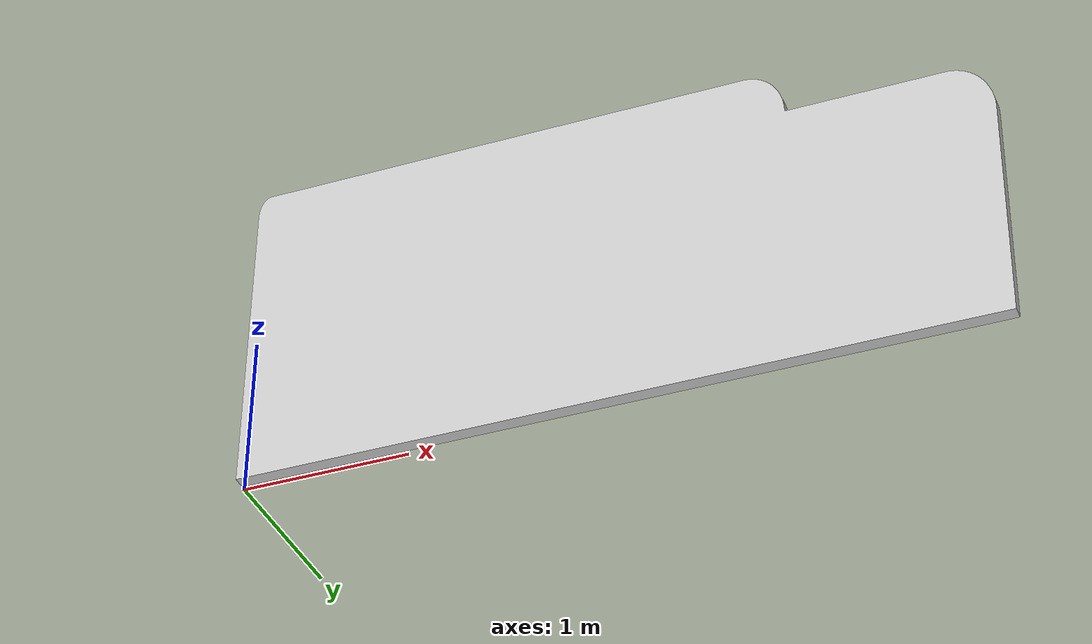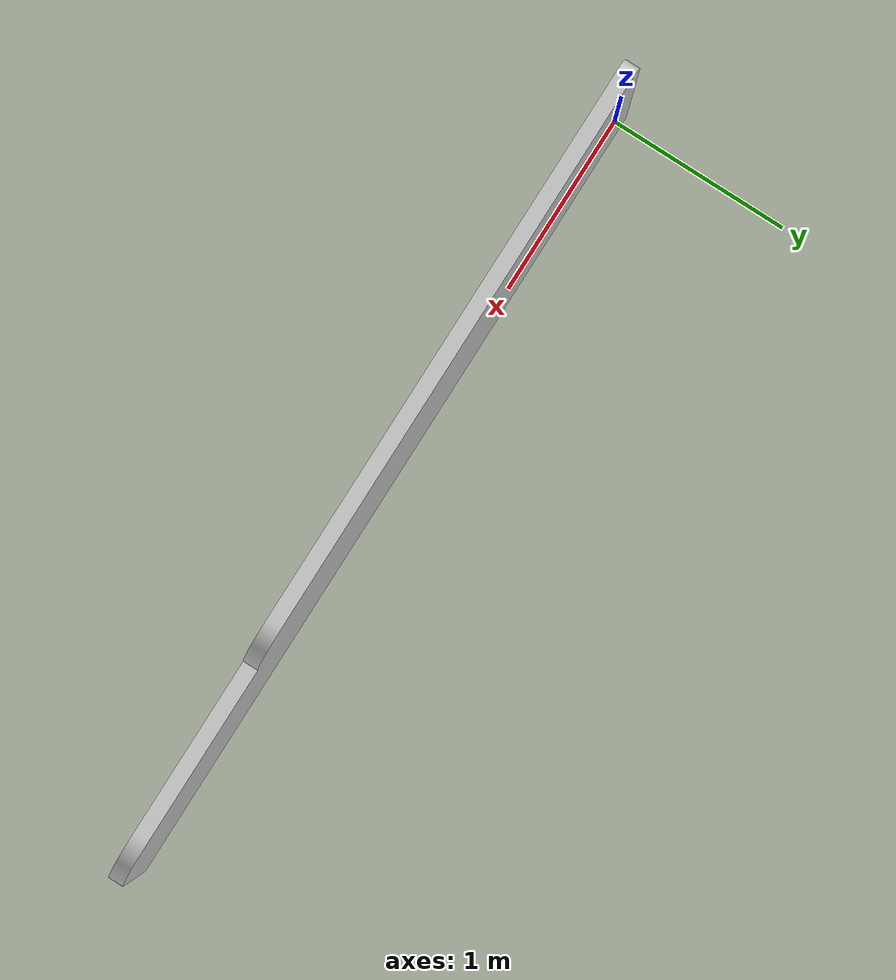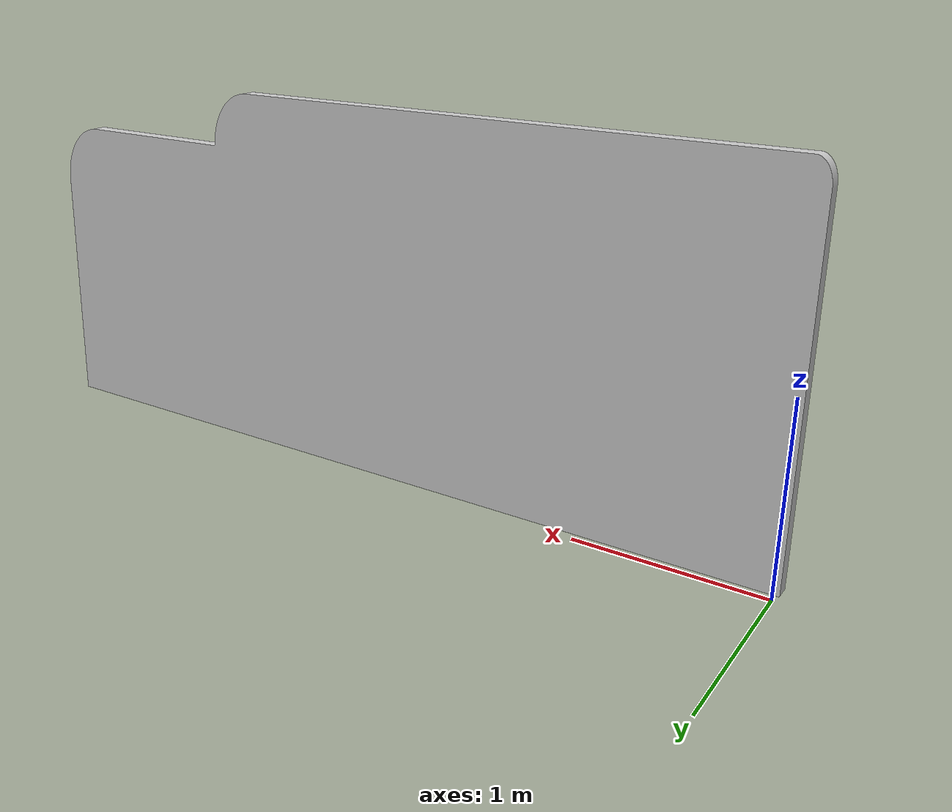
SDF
<?xml version="1.0" ?>
<sdf version="1.6">
  <model name="trennwand">
    <static>true</static>
    <link name="link">
      <collision name="collision">
        <geometry>
          <mesh>
            <scale>0.8 0.8 1</scale>
            <uri>model://trennwand/meshes/trennwand.dae</uri>
          </mesh>
        </geometry>
      </collision>
      <visual name="visual">
        <geometry>
          <mesh>
            <scale>0.8 0.8 1</scale>
            <uri>model://trennwand/meshes/trennwand.dae</uri>
          </mesh>
        </geometry>
       <material>
         <script>
           <uri>model://flipchart/materials/scripts</uri>
           <uri>model://flipchart/materials/textures</uri>
           <name>FlipChart/Diffuse</name>
         </script>
       </material>
      </visual>
    </link>
  </model>
</sdf>
